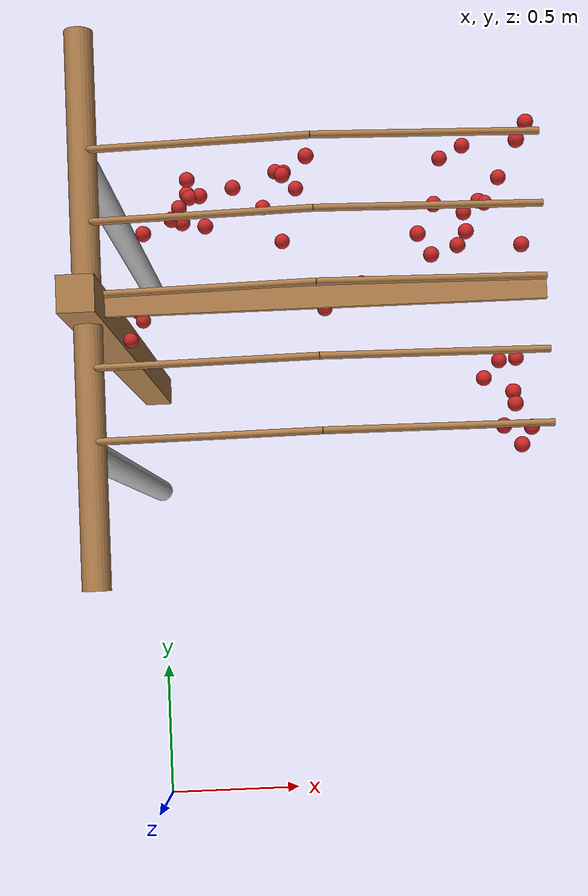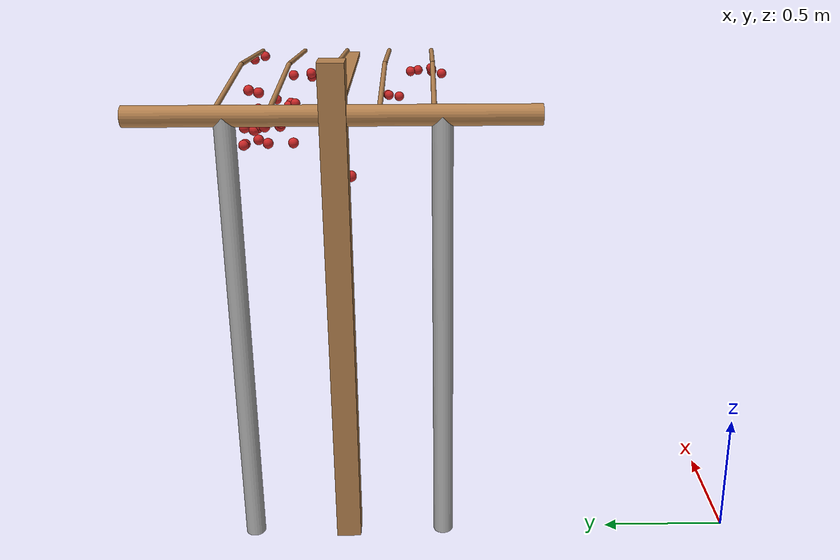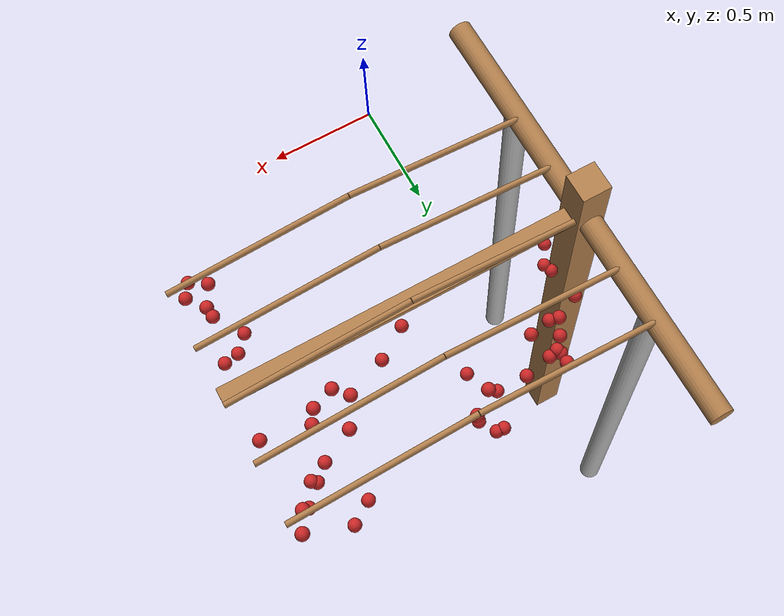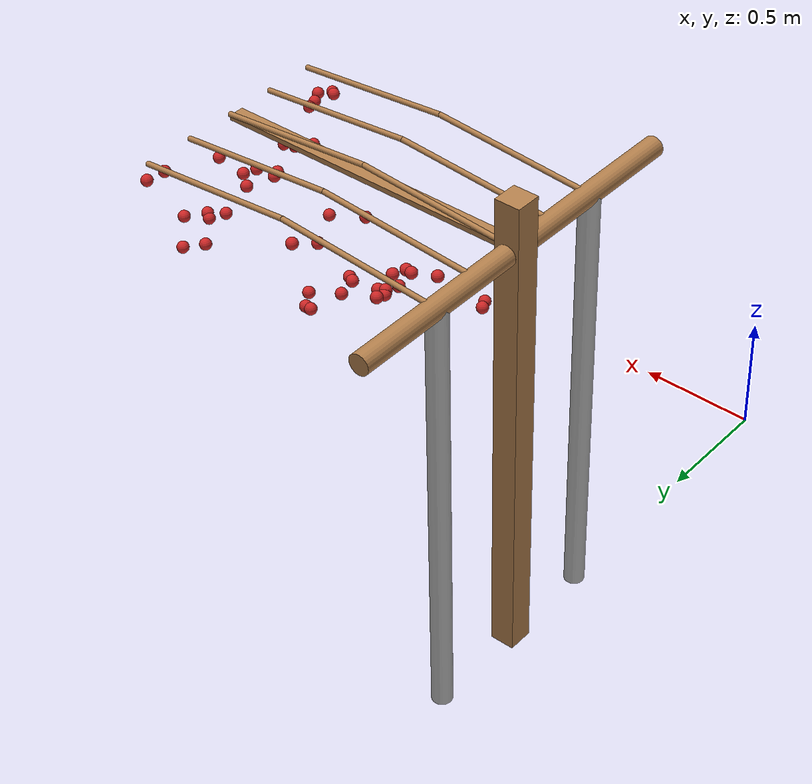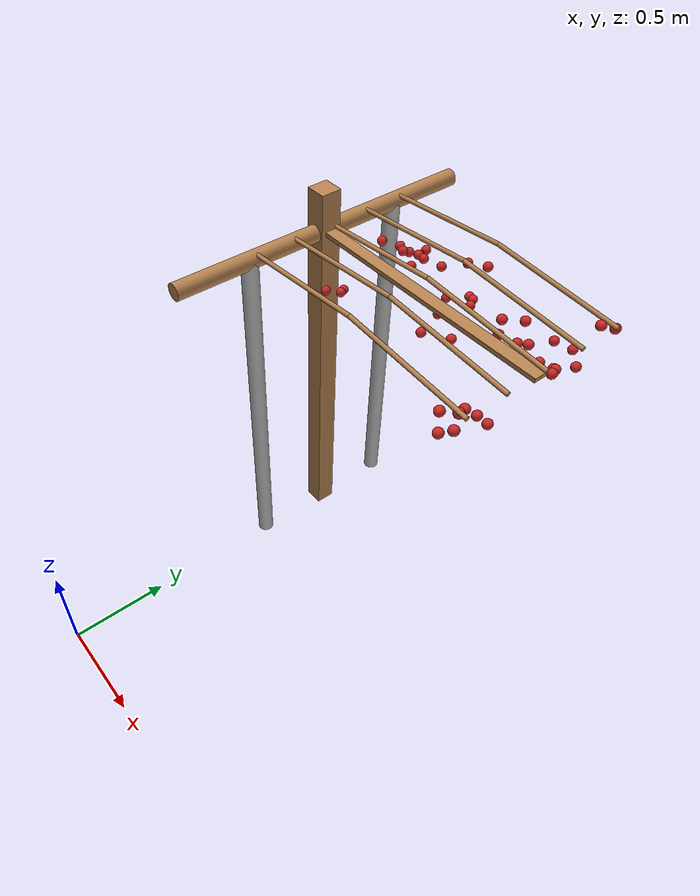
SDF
<sdf version="1.4">
 <model name="pergola">
  <include><name>post_2</name><pose>0.0 1.6 0 0 0 0</pose><uri>model://post</uri></include>
  <link name="beam_2">
   <pose>0.625 1.6 1.81 0 0 0</pose>
   <collision name="collision"><geometry><box><size>1.25 0.06 0.02</size></box></geometry></collision>
   <visual name="visual">
    <geometry><box><size>1.25 0.06 0.02</size></box></geometry>
    <material><script><name>Gazebo/Wood</name></script></material>
   </visual>
   <inertial>
    <mass>5</mass>
    <inertia>
     <ixx>0.0016666666666666668</ixx>
     <ixy>0.0</ixy>
     <ixz>0.0</ixz>
     <iyy>0.6525416666666667</iyy>
     <iyz>0.0</iyz>
     <izz>0.6512083333333333</izz>
    </inertia>
   </inertial>
  </link>
  <include><name>tree_1</name><pose>0.0 1.2000000000000002 0 0 0 0</pose><uri>model://tree_trunk</uri></include>
  <include><name>tree_2</name><pose>0.0 2.0 0 0 0 0</pose><uri>model://tree_trunk</uri></include>
  <link name="baseBranch_1">
   <pose>0.0 1.2000000000000002 1.8 1.5707963267948966 0 0</pose>
   <collision name="collision">
    <geometry><cylinder><radius>0.04</radius><length>0.74</length></cylinder></geometry>
   </collision>
   <visual name="visual">
    <geometry><cylinder><radius>0.04</radius><length>0.74</length></cylinder></geometry>
    <material><script><name>Gazebo/WoodFloor</name></script></material>
   </visual>
   <inertial>
    <mass>10</mass>
    <inertia>
     <ixx>0.4603333333333333</ixx>
     <ixy>0.0</ixy>
     <ixz>0.0</ixz>
     <iyy>0.4603333333333333</iyy>
     <iyz>0.0</iyz>
     <izz>0.008</izz>
    </inertia>
   </inertial>
  </link>
  <link name="baseBranch_2">
   <pose>0.0 2.0 1.8 1.5707963267948966 0 0</pose>
   <collision name="collision">
    <geometry><cylinder><radius>0.04</radius><length>0.74</length></cylinder></geometry>
   </collision>
   <visual name="visual">
    <geometry><cylinder><radius>0.04</radius><length>0.74</length></cylinder></geometry>
    <material><script><name>Gazebo/WoodFloor</name></script></material>
   </visual>
   <inertial>
    <mass>10</mass>
    <inertia>
     <ixx>0.4603333333333333</ixx>
     <ixy>0.0</ixy>
     <ixz>0.0</ixz>
     <iyy>0.4603333333333333</iyy>
     <iyz>0.0</iyz>
     <izz>0.008</izz>
    </inertia>
   </inertial>
  </link>
  <link name="vine_12">
   <pose>0.3125 1.2300000000000002 1.85 0 1.4909663410826592 0</pose>
   <collision name="collision">
    <geometry><cylinder><radius>0.01</radius><length>0.6269968101992226</length></cylinder></geometry>
   </collision>
   <visual name="visual">
    <geometry><cylinder><radius>0.01</radius><length>0.6269968101992226</length></cylinder></geometry>
    <material><script><name>Gazebo/WoodFloor</name></script></material>
   </visual>
   <inertial>
    <mass>5</mass>
    <inertia>
     <ixx>0.1639270833333333</ixx>
     <ixy>0.0</ixy>
     <ixz>0.0</ixz>
     <iyy>0.1639270833333333</iyy>
     <iyz>0.0</iyz>
     <izz>0.00025</izz>
    </inertia>
   </inertial>
  </link>
  <link name="vine_13">
   <pose>0.9375 1.2300000000000002 1.85 0 -1.4909663410826592 0</pose>
   <collision name="collision">
    <geometry><cylinder><radius>0.01</radius><length>0.6269968101992226</length></cylinder></geometry>
   </collision>
   <visual name="visual">
    <geometry><cylinder><radius>0.01</radius><length>0.6269968101992226</length></cylinder></geometry>
    <material><script><name>Gazebo/WoodFloor</name></script></material>
   </visual>
   <inertial>
    <mass>5</mass>
    <inertia>
     <ixx>0.1639270833333333</ixx>
     <ixy>0.0</ixy>
     <ixz>0.0</ixz>
     <iyy>0.1639270833333333</iyy>
     <iyz>0.0</iyz>
     <izz>0.00025</izz>
    </inertia>
   </inertial>
  </link>
  <link name="vine_14">
   <pose>0.3125 1.4300000000000002 1.85 0 1.4909663410826592 0</pose>
   <collision name="collision">
    <geometry><cylinder><radius>0.01</radius><length>0.6269968101992226</length></cylinder></geometry>
   </collision>
   <visual name="visual">
    <geometry><cylinder><radius>0.01</radius><length>0.6269968101992226</length></cylinder></geometry>
    <material><script><name>Gazebo/WoodFloor</name></script></material>
   </visual>
   <inertial>
    <mass>5</mass>
    <inertia>
     <ixx>0.1639270833333333</ixx>
     <ixy>0.0</ixy>
     <ixz>0.0</ixz>
     <iyy>0.1639270833333333</iyy>
     <iyz>0.0</iyz>
     <izz>0.00025</izz>
    </inertia>
   </inertial>
  </link>
  <link name="vine_15">
   <pose>0.9375 1.4300000000000002 1.85 0 -1.4909663410826592 0</pose>
   <collision name="collision">
    <geometry><cylinder><radius>0.01</radius><length>0.6269968101992226</length></cylinder></geometry>
   </collision>
   <visual name="visual">
    <geometry><cylinder><radius>0.01</radius><length>0.6269968101992226</length></cylinder></geometry>
    <material><script><name>Gazebo/WoodFloor</name></script></material>
   </visual>
   <inertial>
    <mass>5</mass>
    <inertia>
     <ixx>0.1639270833333333</ixx>
     <ixy>0.0</ixy>
     <ixz>0.0</ixz>
     <iyy>0.1639270833333333</iyy>
     <iyz>0.0</iyz>
     <izz>0.00025</izz>
    </inertia>
   </inertial>
  </link>
  <link name="vine_16">
   <pose>0.3125 1.6300000000000001 1.85 0 1.4909663410826592 0</pose>
   <collision name="collision">
    <geometry><cylinder><radius>0.01</radius><length>0.6269968101992226</length></cylinder></geometry>
   </collision>
   <visual name="visual">
    <geometry><cylinder><radius>0.01</radius><length>0.6269968101992226</length></cylinder></geometry>
    <material><script><name>Gazebo/WoodFloor</name></script></material>
   </visual>
   <inertial>
    <mass>5</mass>
    <inertia>
     <ixx>0.1639270833333333</ixx>
     <ixy>0.0</ixy>
     <ixz>0.0</ixz>
     <iyy>0.1639270833333333</iyy>
     <iyz>0.0</iyz>
     <izz>0.00025</izz>
    </inertia>
   </inertial>
  </link>
  <link name="vine_17">
   <pose>0.9375 1.6300000000000001 1.85 0 -1.4909663410826592 0</pose>
   <collision name="collision">
    <geometry><cylinder><radius>0.01</radius><length>0.6269968101992226</length></cylinder></geometry>
   </collision>
   <visual name="visual">
    <geometry><cylinder><radius>0.01</radius><length>0.6269968101992226</length></cylinder></geometry>
    <material><script><name>Gazebo/WoodFloor</name></script></material>
   </visual>
   <inertial>
    <mass>5</mass>
    <inertia>
     <ixx>0.1639270833333333</ixx>
     <ixy>0.0</ixy>
     <ixz>0.0</ixz>
     <iyy>0.1639270833333333</iyy>
     <iyz>0.0</iyz>
     <izz>0.00025</izz>
    </inertia>
   </inertial>
  </link>
  <link name="vine_18">
   <pose>0.3125 1.83 1.85 0 1.4909663410826592 0</pose>
   <collision name="collision">
    <geometry><cylinder><radius>0.01</radius><length>0.6269968101992226</length></cylinder></geometry>
   </collision>
   <visual name="visual">
    <geometry><cylinder><radius>0.01</radius><length>0.6269968101992226</length></cylinder></geometry>
    <material><script><name>Gazebo/WoodFloor</name></script></material>
   </visual>
   <inertial>
    <mass>5</mass>
    <inertia>
     <ixx>0.1639270833333333</ixx>
     <ixy>0.0</ixy>
     <ixz>0.0</ixz>
     <iyy>0.1639270833333333</iyy>
     <iyz>0.0</iyz>
     <izz>0.00025</izz>
    </inertia>
   </inertial>
  </link>
  <link name="vine_19">
   <pose>0.9375 1.83 1.85 0 -1.4909663410826592 0</pose>
   <collision name="collision">
    <geometry><cylinder><radius>0.01</radius><length>0.6269968101992226</length></cylinder></geometry>
   </collision>
   <visual name="visual">
    <geometry><cylinder><radius>0.01</radius><length>0.6269968101992226</length></cylinder></geometry>
    <material><script><name>Gazebo/WoodFloor</name></script></material>
   </visual>
   <inertial>
    <mass>5</mass>
    <inertia>
     <ixx>0.1639270833333333</ixx>
     <ixy>0.0</ixy>
     <ixz>0.0</ixz>
     <iyy>0.1639270833333333</iyy>
     <iyz>0.0</iyz>
     <izz>0.00025</izz>
    </inertia>
   </inertial>
  </link>
  <link name="vine_20">
   <pose>0.3125 2.03 1.85 0 1.4909663410826592 0</pose>
   <collision name="collision">
    <geometry><cylinder><radius>0.01</radius><length>0.6269968101992226</length></cylinder></geometry>
   </collision>
   <visual name="visual">
    <geometry><cylinder><radius>0.01</radius><length>0.6269968101992226</length></cylinder></geometry>
    <material><script><name>Gazebo/WoodFloor</name></script></material>
   </visual>
   <inertial>
    <mass>5</mass>
    <inertia>
     <ixx>0.1639270833333333</ixx>
     <ixy>0.0</ixy>
     <ixz>0.0</ixz>
     <iyy>0.1639270833333333</iyy>
     <iyz>0.0</iyz>
     <izz>0.00025</izz>
    </inertia>
   </inertial>
  </link>
  <link name="vine_21">
   <pose>0.9375 2.03 1.85 0 -1.4909663410826592 0</pose>
   <collision name="collision">
    <geometry><cylinder><radius>0.01</radius><length>0.6269968101992226</length></cylinder></geometry>
   </collision>
   <visual name="visual">
    <geometry><cylinder><radius>0.01</radius><length>0.6269968101992226</length></cylinder></geometry>
    <material><script><name>Gazebo/WoodFloor</name></script></material>
   </visual>
   <inertial>
    <mass>5</mass>
    <inertia>
     <ixx>0.1639270833333333</ixx>
     <ixy>0.0</ixy>
     <ixz>0.0</ixz>
     <iyy>0.1639270833333333</iyy>
     <iyz>0.0</iyz>
     <izz>0.00025</izz>
    </inertia>
   </inertial>
  </link>
  <link name="fruit_0">
   <pose>0.3225273567295616 1.8405149905720213 1.6840310632448954 0 0 0</pose>
   <collision name="fruit_collision_0"><geometry><sphere><radius>0.022</radius></sphere></geometry></collision>
   <visual name="visual">
    <geometry><sphere><radius>0.022</radius></sphere></geometry>
    <material><script><name>Gazebo/Red</name></script></material>
   </visual>
   <inertial>
    <mass>0.05</mass>
    <inertia>
     <ixx>9.679999999999999e-06</ixx>
     <ixy>0.0</ixy>
     <ixz>0.0</ixz>
     <iyy>9.679999999999999e-06</iyy>
     <iyz>0.0</iyz>
     <izz>9.679999999999999e-06</izz>
    </inertia>
   </inertial>
   <sensor name="fruit_contact_0" type="contact">
    <plugin name="contact_plugin_0" filename="libcontact_plugin.so"/>
    <contact><collision>fruit_collision_0</collision><topic>fruit_contact_topic_0</topic></contact>
   </sensor>
  </link>
  <link name="fruit_31">
   <pose>0.5364001979669047 1.8185090529240748 1.5596476393042469 0 0 0</pose>
   <collision name="fruit_collision_31"><geometry><sphere><radius>0.022</radius></sphere></geometry></collision>
   <visual name="visual">
    <geometry><sphere><radius>0.022</radius></sphere></geometry>
    <material><script><name>Gazebo/Red</name></script></material>
   </visual>
   <inertial>
    <mass>0.05</mass>
    <inertia>
     <ixx>9.679999999999999e-06</ixx>
     <ixy>0.0</ixy>
     <ixz>0.0</ixz>
     <iyy>9.679999999999999e-06</iyy>
     <iyz>0.0</iyz>
     <izz>9.679999999999999e-06</izz>
    </inertia>
   </inertial>
   <sensor name="fruit_contact_31" type="contact">
    <plugin name="contact_plugin_31" filename="libcontact_plugin.so"/>
    <contact><collision>fruit_collision_31</collision><topic>fruit_contact_topic_31</topic></contact>
   </sensor>
  </link>
  <link name="fruit_86">
   <pose>1.1895002529295056 2.01226719060957 1.8101280245405256 0 0 0</pose>
   <collision name="fruit_collision_86"><geometry><sphere><radius>0.022</radius></sphere></geometry></collision>
   <visual name="visual">
    <geometry><sphere><radius>0.022</radius></sphere></geometry>
    <material><script><name>Gazebo/Red</name></script></material>
   </visual>
   <inertial>
    <mass>0.05</mass>
    <inertia>
     <ixx>9.679999999999999e-06</ixx>
     <ixy>0.0</ixy>
     <ixz>0.0</ixz>
     <iyy>9.679999999999999e-06</iyy>
     <iyz>0.0</iyz>
     <izz>9.679999999999999e-06</izz>
    </inertia>
   </inertial>
   <sensor name="fruit_contact_86" type="contact">
    <plugin name="contact_plugin_86" filename="libcontact_plugin.so"/>
    <contact><collision>fruit_collision_86</collision><topic>fruit_contact_topic_86</topic></contact>
   </sensor>
  </link>
  <link name="fruit_92">
   <pose>0.08494786228611792 1.5492473335590864 1.544669189918997 0 0 0</pose>
   <collision name="fruit_collision_92"><geometry><sphere><radius>0.022</radius></sphere></geometry></collision>
   <visual name="visual">
    <geometry><sphere><radius>0.022</radius></sphere></geometry>
    <material><script><name>Gazebo/Red</name></script></material>
   </visual>
   <inertial>
    <mass>0.05</mass>
    <inertia>
     <ixx>9.679999999999999e-06</ixx>
     <ixy>0.0</ixy>
     <ixz>0.0</ixz>
     <iyy>9.679999999999999e-06</iyy>
     <iyz>0.0</iyz>
     <izz>9.679999999999999e-06</izz>
    </inertia>
   </inertial>
   <sensor name="fruit_contact_92" type="contact">
    <plugin name="contact_plugin_92" filename="libcontact_plugin.so"/>
    <contact><collision>fruit_collision_92</collision><topic>fruit_contact_topic_92</topic></contact>
   </sensor>
  </link>
  <link name="fruit_101">
   <pose>1.1229882979625103 1.232325282342489 1.7637829031186156 0 0 0</pose>
   <collision name="fruit_collision_101"><geometry><sphere><radius>0.022</radius></sphere></geometry></collision>
   <visual name="visual">
    <geometry><sphere><radius>0.022</radius></sphere></geometry>
    <material><script><name>Gazebo/Red</name></script></material>
   </visual>
   <inertial>
    <mass>0.05</mass>
    <inertia>
     <ixx>9.679999999999999e-06</ixx>
     <ixy>0.0</ixy>
     <ixz>0.0</ixz>
     <iyy>9.679999999999999e-06</iyy>
     <iyz>0.0</iyz>
     <izz>9.679999999999999e-06</izz>
    </inertia>
   </inertial>
   <sensor name="fruit_contact_101" type="contact">
    <plugin name="contact_plugin_101" filename="libcontact_plugin.so"/>
    <contact><collision>fruit_collision_101</collision><topic>fruit_contact_topic_101</topic></contact>
   </sensor>
  </link>
  <link name="fruit_103">
   <pose>1.0915563582873864 1.382369190686481 1.6380419247071136 0 0 0</pose>
   <collision name="fruit_collision_103"><geometry><sphere><radius>0.022</radius></sphere></geometry></collision>
   <visual name="visual">
    <geometry><sphere><radius>0.022</radius></sphere></geometry>
    <material><script><name>Gazebo/Red</name></script></material>
   </visual>
   <inertial>
    <mass>0.05</mass>
    <inertia>
     <ixx>9.679999999999999e-06</ixx>
     <ixy>0.0</ixy>
     <ixz>0.0</ixz>
     <iyy>9.679999999999999e-06</iyy>
     <iyz>0.0</iyz>
     <izz>9.679999999999999e-06</izz>
    </inertia>
   </inertial>
   <sensor name="fruit_contact_103" type="contact">
    <plugin name="contact_plugin_103" filename="libcontact_plugin.so"/>
    <contact><collision>fruit_collision_103</collision><topic>fruit_contact_topic_103</topic></contact>
   </sensor>
  </link>
  <link name="fruit_156">
   <pose>0.947747839698166 1.716631273491678 1.7553536726316872 0 0 0</pose>
   <collision name="fruit_collision_156"><geometry><sphere><radius>0.022</radius></sphere></geometry></collision>
   <visual name="visual">
    <geometry><sphere><radius>0.022</radius></sphere></geometry>
    <material><script><name>Gazebo/Red</name></script></material>
   </visual>
   <inertial>
    <mass>0.05</mass>
    <inertia>
     <ixx>9.679999999999999e-06</ixx>
     <ixy>0.0</ixy>
     <ixz>0.0</ixz>
     <iyy>9.679999999999999e-06</iyy>
     <iyz>0.0</iyz>
     <izz>9.679999999999999e-06</izz>
    </inertia>
   </inertial>
   <sensor name="fruit_contact_156" type="contact">
    <plugin name="contact_plugin_156" filename="libcontact_plugin.so"/>
    <contact><collision>fruit_collision_156</collision><topic>fruit_contact_topic_156</topic></contact>
   </sensor>
  </link>
  <link name="fruit_182">
   <pose>0.48419891619746147 1.9175595285857263 1.5716825052920949 0 0 0</pose>
   <collision name="fruit_collision_182"><geometry><sphere><radius>0.022</radius></sphere></geometry></collision>
   <visual name="visual">
    <geometry><sphere><radius>0.022</radius></sphere></geometry>
    <material><script><name>Gazebo/Red</name></script></material>
   </visual>
   <inertial>
    <mass>0.05</mass>
    <inertia>
     <ixx>9.679999999999999e-06</ixx>
     <ixy>0.0</ixy>
     <ixz>0.0</ixz>
     <iyy>9.679999999999999e-06</iyy>
     <iyz>0.0</iyz>
     <izz>9.679999999999999e-06</izz>
    </inertia>
   </inertial>
   <sensor name="fruit_contact_182" type="contact">
    <plugin name="contact_plugin_182" filename="libcontact_plugin.so"/>
    <contact><collision>fruit_collision_182</collision><topic>fruit_contact_topic_182</topic></contact>
   </sensor>
  </link>
  <link name="fruit_206">
   <pose>0.54478654498442 1.9527427432460631 1.7714930771649153 0 0 0</pose>
   <collision name="fruit_collision_206"><geometry><sphere><radius>0.022</radius></sphere></geometry></collision>
   <visual name="visual">
    <geometry><sphere><radius>0.022</radius></sphere></geometry>
    <material><script><name>Gazebo/Red</name></script></material>
   </visual>
   <inertial>
    <mass>0.05</mass>
    <inertia>
     <ixx>9.679999999999999e-06</ixx>
     <ixy>0.0</ixy>
     <ixz>0.0</ixz>
     <iyy>9.679999999999999e-06</iyy>
     <iyz>0.0</iyz>
     <izz>9.679999999999999e-06</izz>
    </inertia>
   </inertial>
   <sensor name="fruit_contact_206" type="contact">
    <plugin name="contact_plugin_206" filename="libcontact_plugin.so"/>
    <contact><collision>fruit_collision_206</collision><topic>fruit_contact_topic_206</topic></contact>
   </sensor>
  </link>
  <link name="fruit_221">
   <pose>1.2041568449195628 1.7424174604010396 1.720387239047525 0 0 0</pose>
   <collision name="fruit_collision_221"><geometry><sphere><radius>0.022</radius></sphere></geometry></collision>
   <visual name="visual">
    <geometry><sphere><radius>0.022</radius></sphere></geometry>
    <material><script><name>Gazebo/Red</name></script></material>
   </visual>
   <inertial>
    <mass>0.05</mass>
    <inertia>
     <ixx>9.679999999999999e-06</ixx>
     <ixy>0.0</ixy>
     <ixz>0.0</ixz>
     <iyy>9.679999999999999e-06</iyy>
     <iyz>0.0</iyz>
     <izz>9.679999999999999e-06</izz>
    </inertia>
   </inertial>
   <sensor name="fruit_contact_221" type="contact">
    <plugin name="contact_plugin_221" filename="libcontact_plugin.so"/>
    <contact><collision>fruit_collision_221</collision><topic>fruit_contact_topic_221</topic></contact>
   </sensor>
  </link>
  <link name="fruit_226">
   <pose>0.15289804693286033 1.812530846756972 1.7387979842097516 0 0 0</pose>
   <collision name="fruit_collision_226"><geometry><sphere><radius>0.022</radius></sphere></geometry></collision>
   <visual name="visual">
    <geometry><sphere><radius>0.022</radius></sphere></geometry>
    <material><script><name>Gazebo/Red</name></script></material>
   </visual>
   <inertial>
    <mass>0.05</mass>
    <inertia>
     <ixx>9.679999999999999e-06</ixx>
     <ixy>0.0</ixy>
     <ixz>0.0</ixz>
     <iyy>9.679999999999999e-06</iyy>
     <iyz>0.0</iyz>
     <izz>9.679999999999999e-06</izz>
    </inertia>
   </inertial>
   <sensor name="fruit_contact_226" type="contact">
    <plugin name="contact_plugin_226" filename="libcontact_plugin.so"/>
    <contact><collision>fruit_collision_226</collision><topic>fruit_contact_topic_226</topic></contact>
   </sensor>
  </link>
  <link name="fruit_250">
   <pose>0.6504289196335371 1.6019935370592375 1.6348968980321459 0 0 0</pose>
   <collision name="fruit_collision_250"><geometry><sphere><radius>0.022</radius></sphere></geometry></collision>
   <visual name="visual">
    <geometry><sphere><radius>0.022</radius></sphere></geometry>
    <material><script><name>Gazebo/Red</name></script></material>
   </visual>
   <inertial>
    <mass>0.05</mass>
    <inertia>
     <ixx>9.679999999999999e-06</ixx>
     <ixy>0.0</ixy>
     <ixz>0.0</ixz>
     <iyy>9.679999999999999e-06</iyy>
     <iyz>0.0</iyz>
     <izz>9.679999999999999e-06</izz>
    </inertia>
   </inertial>
   <sensor name="fruit_contact_250" type="contact">
    <plugin name="contact_plugin_250" filename="libcontact_plugin.so"/>
    <contact><collision>fruit_collision_250</collision><topic>fruit_contact_topic_250</topic></contact>
   </sensor>
  </link>
  <link name="fruit_262">
   <pose>1.0611208088133128 1.8667964777444608 1.6138167478594359 0 0 0</pose>
   <collision name="fruit_collision_262"><geometry><sphere><radius>0.022</radius></sphere></geometry></collision>
   <visual name="visual">
    <geometry><sphere><radius>0.022</radius></sphere></geometry>
    <material><script><name>Gazebo/Red</name></script></material>
   </visual>
   <inertial>
    <mass>0.05</mass>
    <inertia>
     <ixx>9.679999999999999e-06</ixx>
     <ixy>0.0</ixy>
     <ixz>0.0</ixz>
     <iyy>9.679999999999999e-06</iyy>
     <iyz>0.0</iyz>
     <izz>9.679999999999999e-06</izz>
    </inertia>
   </inertial>
   <sensor name="fruit_contact_262" type="contact">
    <plugin name="contact_plugin_262" filename="libcontact_plugin.so"/>
    <contact><collision>fruit_collision_262</collision><topic>fruit_contact_topic_262</topic></contact>
   </sensor>
  </link>
  <link name="fruit_276">
   <pose>0.910478817125676 1.7700634731187612 1.78186771902214 0 0 0</pose>
   <collision name="fruit_collision_276"><geometry><sphere><radius>0.022</radius></sphere></geometry></collision>
   <visual name="visual">
    <geometry><sphere><radius>0.022</radius></sphere></geometry>
    <material><script><name>Gazebo/Red</name></script></material>
   </visual>
   <inertial>
    <mass>0.05</mass>
    <inertia>
     <ixx>9.679999999999999e-06</ixx>
     <ixy>0.0</ixy>
     <ixz>0.0</ixz>
     <iyy>9.679999999999999e-06</iyy>
     <iyz>0.0</iyz>
     <izz>9.679999999999999e-06</izz>
    </inertia>
   </inertial>
   <sensor name="fruit_contact_276" type="contact">
    <plugin name="contact_plugin_276" filename="libcontact_plugin.so"/>
    <contact><collision>fruit_collision_276</collision><topic>fruit_contact_topic_276</topic></contact>
   </sensor>
  </link>
  <link name="fruit_311">
   <pose>0.2515280540978459 1.8919731317827642 1.6991050537490546 0 0 0</pose>
   <collision name="fruit_collision_311"><geometry><sphere><radius>0.022</radius></sphere></geometry></collision>
   <visual name="visual">
    <geometry><sphere><radius>0.022</radius></sphere></geometry>
    <material><script><name>Gazebo/Red</name></script></material>
   </visual>
   <inertial>
    <mass>0.05</mass>
    <inertia>
     <ixx>9.679999999999999e-06</ixx>
     <ixy>0.0</ixy>
     <ixz>0.0</ixz>
     <iyy>9.679999999999999e-06</iyy>
     <iyz>0.0</iyz>
     <izz>9.679999999999999e-06</izz>
    </inertia>
   </inertial>
   <sensor name="fruit_contact_311" type="contact">
    <plugin name="contact_plugin_311" filename="libcontact_plugin.so"/>
    <contact><collision>fruit_collision_311</collision><topic>fruit_contact_topic_311</topic></contact>
   </sensor>
  </link>
  <link name="fruit_313">
   <pose>1.0000682452482068 2.0308738691373827 1.6030450525827693 0 0 0</pose>
   <collision name="fruit_collision_313"><geometry><sphere><radius>0.022</radius></sphere></geometry></collision>
   <visual name="visual">
    <geometry><sphere><radius>0.022</radius></sphere></geometry>
    <material><script><name>Gazebo/Red</name></script></material>
   </visual>
   <inertial>
    <mass>0.05</mass>
    <inertia>
     <ixx>9.679999999999999e-06</ixx>
     <ixy>0.0</ixy>
     <ixz>0.0</ixz>
     <iyy>9.679999999999999e-06</iyy>
     <iyz>0.0</iyz>
     <izz>9.679999999999999e-06</izz>
    </inertia>
   </inertial>
   <sensor name="fruit_contact_313" type="contact">
    <plugin name="contact_plugin_313" filename="libcontact_plugin.so"/>
    <contact><collision>fruit_collision_313</collision><topic>fruit_contact_topic_313</topic></contact>
   </sensor>
  </link>
  <link name="fruit_346">
   <pose>1.2209945789919916 2.067080214084463 1.7886761623060292 0 0 0</pose>
   <collision name="fruit_collision_346"><geometry><sphere><radius>0.022</radius></sphere></geometry></collision>
   <visual name="visual">
    <geometry><sphere><radius>0.022</radius></sphere></geometry>
    <material><script><name>Gazebo/Red</name></script></material>
   </visual>
   <inertial>
    <mass>0.05</mass>
    <inertia>
     <ixx>9.679999999999999e-06</ixx>
     <ixy>0.0</ixy>
     <ixz>0.0</ixz>
     <iyy>9.679999999999999e-06</iyy>
     <iyz>0.0</iyz>
     <izz>9.679999999999999e-06</izz>
    </inertia>
   </inertial>
   <sensor name="fruit_contact_346" type="contact">
    <plugin name="contact_plugin_346" filename="libcontact_plugin.so"/>
    <contact><collision>fruit_collision_346</collision><topic>fruit_contact_topic_346</topic></contact>
   </sensor>
  </link>
  <link name="fruit_364">
   <pose>1.1754902094546638 1.1820589170789002 1.7280052667277521 0 0 0</pose>
   <collision name="fruit_collision_364"><geometry><sphere><radius>0.022</radius></sphere></geometry></collision>
   <visual name="visual">
    <geometry><sphere><radius>0.022</radius></sphere></geometry>
    <material><script><name>Gazebo/Red</name></script></material>
   </visual>
   <inertial>
    <mass>0.05</mass>
    <inertia>
     <ixx>9.679999999999999e-06</ixx>
     <ixy>0.0</ixy>
     <ixz>0.0</ixz>
     <iyy>9.679999999999999e-06</iyy>
     <iyz>0.0</iyz>
     <izz>9.679999999999999e-06</izz>
    </inertia>
   </inertial>
   <sensor name="fruit_contact_364" type="contact">
    <plugin name="contact_plugin_364" filename="libcontact_plugin.so"/>
    <contact><collision>fruit_collision_364</collision><topic>fruit_contact_topic_364</topic></contact>
   </sensor>
  </link>
  <link name="fruit_366">
   <pose>1.160125437372911 1.293909158338664 1.747805847627701 0 0 0</pose>
   <collision name="fruit_collision_366"><geometry><sphere><radius>0.022</radius></sphere></geometry></collision>
   <visual name="visual">
    <geometry><sphere><radius>0.022</radius></sphere></geometry>
    <material><script><name>Gazebo/Red</name></script></material>
   </visual>
   <inertial>
    <mass>0.05</mass>
    <inertia>
     <ixx>9.679999999999999e-06</ixx>
     <ixy>0.0</ixy>
     <ixz>0.0</ixz>
     <iyy>9.679999999999999e-06</iyy>
     <iyz>0.0</iyz>
     <izz>9.679999999999999e-06</izz>
    </inertia>
   </inertial>
   <sensor name="fruit_contact_366" type="contact">
    <plugin name="contact_plugin_366" filename="libcontact_plugin.so"/>
    <contact><collision>fruit_collision_366</collision><topic>fruit_contact_topic_366</topic></contact>
   </sensor>
  </link>
  <link name="fruit_376">
   <pose>0.5239546907367977 2.026809737029485 1.553896722261328 0 0 0</pose>
   <collision name="fruit_collision_376"><geometry><sphere><radius>0.022</radius></sphere></geometry></collision>
   <visual name="visual">
    <geometry><sphere><radius>0.022</radius></sphere></geometry>
    <material><script><name>Gazebo/Red</name></script></material>
   </visual>
   <inertial>
    <mass>0.05</mass>
    <inertia>
     <ixx>9.679999999999999e-06</ixx>
     <ixy>0.0</ixy>
     <ixz>0.0</ixz>
     <iyy>9.679999999999999e-06</iyy>
     <iyz>0.0</iyz>
     <izz>9.679999999999999e-06</izz>
    </inertia>
   </inertial>
   <sensor name="fruit_contact_376" type="contact">
    <plugin name="contact_plugin_376" filename="libcontact_plugin.so"/>
    <contact><collision>fruit_collision_376</collision><topic>fruit_contact_topic_376</topic></contact>
   </sensor>
  </link>
  <link name="fruit_396">
   <pose>1.1076608903005674 1.9048854159730695 1.5929215124539255 0 0 0</pose>
   <collision name="fruit_collision_396"><geometry><sphere><radius>0.022</radius></sphere></geometry></collision>
   <visual name="visual">
    <geometry><sphere><radius>0.022</radius></sphere></geometry>
    <material><script><name>Gazebo/Red</name></script></material>
   </visual>
   <inertial>
    <mass>0.05</mass>
    <inertia>
     <ixx>9.679999999999999e-06</ixx>
     <ixy>0.0</ixy>
     <ixz>0.0</ixz>
     <iyy>9.679999999999999e-06</iyy>
     <iyz>0.0</iyz>
     <izz>9.679999999999999e-06</izz>
    </inertia>
   </inertial>
   <sensor name="fruit_contact_396" type="contact">
    <plugin name="contact_plugin_396" filename="libcontact_plugin.so"/>
    <contact><collision>fruit_collision_396</collision><topic>fruit_contact_topic_396</topic></contact>
   </sensor>
  </link>
  <link name="fruit_405">
   <pose>1.1564934330849863 1.3279728810831766 1.7426872211136382 0 0 0</pose>
   <collision name="fruit_collision_405"><geometry><sphere><radius>0.022</radius></sphere></geometry></collision>
   <visual name="visual">
    <geometry><sphere><radius>0.022</radius></sphere></geometry>
    <material><script><name>Gazebo/Red</name></script></material>
   </visual>
   <inertial>
    <mass>0.05</mass>
    <inertia>
     <ixx>9.679999999999999e-06</ixx>
     <ixy>0.0</ixy>
     <ixz>0.0</ixz>
     <iyy>9.679999999999999e-06</iyy>
     <iyz>0.0</iyz>
     <izz>9.679999999999999e-06</izz>
    </inertia>
   </inertial>
   <sensor name="fruit_contact_405" type="contact">
    <plugin name="contact_plugin_405" filename="libcontact_plugin.so"/>
    <contact><collision>fruit_collision_405</collision><topic>fruit_contact_topic_405</topic></contact>
   </sensor>
  </link>
  <link name="fruit_432">
   <pose>0.3090878690971007 1.9292409775515893 1.6794603402046757 0 0 0</pose>
   <collision name="fruit_collision_432"><geometry><sphere><radius>0.022</radius></sphere></geometry></collision>
   <visual name="visual">
    <geometry><sphere><radius>0.022</radius></sphere></geometry>
    <material><script><name>Gazebo/Red</name></script></material>
   </visual>
   <inertial>
    <mass>0.05</mass>
    <inertia>
     <ixx>9.679999999999999e-06</ixx>
     <ixy>0.0</ixy>
     <ixz>0.0</ixz>
     <iyy>9.679999999999999e-06</iyy>
     <iyz>0.0</iyz>
     <izz>9.679999999999999e-06</izz>
    </inertia>
   </inertial>
   <sensor name="fruit_contact_432" type="contact">
    <plugin name="contact_plugin_432" filename="libcontact_plugin.so"/>
    <contact><collision>fruit_collision_432</collision><topic>fruit_contact_topic_432</topic></contact>
   </sensor>
  </link>
  <link name="fruit_489">
   <pose>0.960243371825367 1.8549806902592934 1.7642659657619935 0 0 0</pose>
   <collision name="fruit_collision_489"><geometry><sphere><radius>0.022</radius></sphere></geometry></collision>
   <visual name="visual">
    <geometry><sphere><radius>0.022</radius></sphere></geometry>
    <material><script><name>Gazebo/Red</name></script></material>
   </visual>
   <inertial>
    <mass>0.05</mass>
    <inertia>
     <ixx>9.679999999999999e-06</ixx>
     <ixy>0.0</ixy>
     <ixz>0.0</ixz>
     <iyy>9.679999999999999e-06</iyy>
     <iyz>0.0</iyz>
     <izz>9.679999999999999e-06</izz>
    </inertia>
   </inertial>
   <sensor name="fruit_contact_489" type="contact">
    <plugin name="contact_plugin_489" filename="libcontact_plugin.so"/>
    <contact><collision>fruit_collision_489</collision><topic>fruit_contact_topic_489</topic></contact>
   </sensor>
  </link>
  <link name="fruit_518">
   <pose>1.0225637080355767 1.7413450966383324 1.7486246091032833 0 0 0</pose>
   <collision name="fruit_collision_518"><geometry><sphere><radius>0.022</radius></sphere></geometry></collision>
   <visual name="visual">
    <geometry><sphere><radius>0.022</radius></sphere></geometry>
    <material><script><name>Gazebo/Red</name></script></material>
   </visual>
   <inertial>
    <mass>0.05</mass>
    <inertia>
     <ixx>9.679999999999999e-06</ixx>
     <ixy>0.0</ixy>
     <ixz>0.0</ixz>
     <iyy>9.679999999999999e-06</iyy>
     <iyz>0.0</iyz>
     <izz>9.679999999999999e-06</izz>
    </inertia>
   </inertial>
   <sensor name="fruit_contact_518" type="contact">
    <plugin name="contact_plugin_518" filename="libcontact_plugin.so"/>
    <contact><collision>fruit_collision_518</collision><topic>fruit_contact_topic_518</topic></contact>
   </sensor>
  </link>
  <link name="fruit_525">
   <pose>1.1377262371050363 1.4314219234621828 1.6341664578632507 0 0 0</pose>
   <collision name="fruit_collision_525"><geometry><sphere><radius>0.022</radius></sphere></geometry></collision>
   <visual name="visual">
    <geometry><sphere><radius>0.022</radius></sphere></geometry>
    <material><script><name>Gazebo/Red</name></script></material>
   </visual>
   <inertial>
    <mass>0.05</mass>
    <inertia>
     <ixx>9.679999999999999e-06</ixx>
     <ixy>0.0</ixy>
     <ixz>0.0</ixz>
     <iyy>9.679999999999999e-06</iyy>
     <iyz>0.0</iyz>
     <izz>9.679999999999999e-06</izz>
    </inertia>
   </inertial>
   <sensor name="fruit_contact_525" type="contact">
    <plugin name="contact_plugin_525" filename="libcontact_plugin.so"/>
    <contact><collision>fruit_collision_525</collision><topic>fruit_contact_topic_525</topic></contact>
   </sensor>
  </link>
  <link name="fruit_555">
   <pose>1.0699865171902372 2.071997731974624 1.5814551327224275 0 0 0</pose>
   <collision name="fruit_collision_555"><geometry><sphere><radius>0.022</radius></sphere></geometry></collision>
   <visual name="visual">
    <geometry><sphere><radius>0.022</radius></sphere></geometry>
    <material><script><name>Gazebo/Red</name></script></material>
   </visual>
   <inertial>
    <mass>0.05</mass>
    <inertia>
     <ixx>9.679999999999999e-06</ixx>
     <ixy>0.0</ixy>
     <ixz>0.0</ixz>
     <iyy>9.679999999999999e-06</iyy>
     <iyz>0.0</iyz>
     <izz>9.679999999999999e-06</izz>
    </inertia>
   </inertial>
   <sensor name="fruit_contact_555" type="contact">
    <plugin name="contact_plugin_555" filename="libcontact_plugin.so"/>
    <contact><collision>fruit_collision_555</collision><topic>fruit_contact_topic_555</topic></contact>
   </sensor>
  </link>
  <link name="fruit_557">
   <pose>0.612890027979164 2.004567895978685 1.767697088653531 0 0 0</pose>
   <collision name="fruit_collision_557"><geometry><sphere><radius>0.022</radius></sphere></geometry></collision>
   <visual name="visual">
    <geometry><sphere><radius>0.022</radius></sphere></geometry>
    <material><script><name>Gazebo/Red</name></script></material>
   </visual>
   <inertial>
    <mass>0.05</mass>
    <inertia>
     <ixx>9.679999999999999e-06</ixx>
     <ixy>0.0</ixy>
     <ixz>0.0</ixz>
     <iyy>9.679999999999999e-06</iyy>
     <iyz>0.0</iyz>
     <izz>9.679999999999999e-06</izz>
    </inertia>
   </inertial>
   <sensor name="fruit_contact_557" type="contact">
    <plugin name="contact_plugin_557" filename="libcontact_plugin.so"/>
    <contact><collision>fruit_collision_557</collision><topic>fruit_contact_topic_557</topic></contact>
   </sensor>
  </link>
  <link name="fruit_562">
   <pose>1.1873786886776798 1.4375528595326783 1.6259873701920335 0 0 0</pose>
   <collision name="fruit_collision_562"><geometry><sphere><radius>0.022</radius></sphere></geometry></collision>
   <visual name="visual">
    <geometry><sphere><radius>0.022</radius></sphere></geometry>
    <material><script><name>Gazebo/Red</name></script></material>
   </visual>
   <inertial>
    <mass>0.05</mass>
    <inertia>
     <ixx>9.679999999999999e-06</ixx>
     <ixy>0.0</ixy>
     <ixz>0.0</ixz>
     <iyy>9.679999999999999e-06</iyy>
     <iyz>0.0</iyz>
     <izz>9.679999999999999e-06</izz>
    </inertia>
   </inertial>
   <sensor name="fruit_contact_562" type="contact">
    <plugin name="contact_plugin_562" filename="libcontact_plugin.so"/>
    <contact><collision>fruit_collision_562</collision><topic>fruit_contact_topic_562</topic></contact>
   </sensor>
  </link>
  <link name="fruit_581">
   <pose>0.4034477267908899 1.9484588221079235 1.6808545609554795 0 0 0</pose>
   <collision name="fruit_collision_581"><geometry><sphere><radius>0.022</radius></sphere></geometry></collision>
   <visual name="visual">
    <geometry><sphere><radius>0.022</radius></sphere></geometry>
    <material><script><name>Gazebo/Red</name></script></material>
   </visual>
   <inertial>
    <mass>0.05</mass>
    <inertia>
     <ixx>9.679999999999999e-06</ixx>
     <ixy>0.0</ixy>
     <ixz>0.0</ixz>
     <iyy>9.679999999999999e-06</iyy>
     <iyz>0.0</iyz>
     <izz>9.679999999999999e-06</izz>
    </inertia>
   </inertial>
   <sensor name="fruit_contact_581" type="contact">
    <plugin name="contact_plugin_581" filename="libcontact_plugin.so"/>
    <contact><collision>fruit_collision_581</collision><topic>fruit_contact_topic_581</topic></contact>
   </sensor>
  </link>
  <link name="fruit_588">
   <pose>0.7575986340852768 1.6699112595255956 1.6337607415304471 0 0 0</pose>
   <collision name="fruit_collision_588"><geometry><sphere><radius>0.022</radius></sphere></geometry></collision>
   <visual name="visual">
    <geometry><sphere><radius>0.022</radius></sphere></geometry>
    <material><script><name>Gazebo/Red</name></script></material>
   </visual>
   <inertial>
    <mass>0.05</mass>
    <inertia>
     <ixx>9.679999999999999e-06</ixx>
     <ixy>0.0</ixy>
     <ixz>0.0</ixz>
     <iyy>9.679999999999999e-06</iyy>
     <iyz>0.0</iyz>
     <izz>9.679999999999999e-06</izz>
    </inertia>
   </inertial>
   <sensor name="fruit_contact_588" type="contact">
    <plugin name="contact_plugin_588" filename="libcontact_plugin.so"/>
    <contact><collision>fruit_collision_588</collision><topic>fruit_contact_topic_588</topic></contact>
   </sensor>
  </link>
  <link name="fruit_595">
   <pose>0.12113541673849401 1.6078667016984733 1.5300018532292259 0 0 0</pose>
   <collision name="fruit_collision_595"><geometry><sphere><radius>0.022</radius></sphere></geometry></collision>
   <visual name="visual">
    <geometry><sphere><radius>0.022</radius></sphere></geometry>
    <material><script><name>Gazebo/Red</name></script></material>
   </visual>
   <inertial>
    <mass>0.05</mass>
    <inertia>
     <ixx>9.679999999999999e-06</ixx>
     <ixy>0.0</ixy>
     <ixz>0.0</ixz>
     <iyy>9.679999999999999e-06</iyy>
     <iyz>0.0</iyz>
     <izz>9.679999999999999e-06</izz>
    </inertia>
   </inertial>
   <sensor name="fruit_contact_595" type="contact">
    <plugin name="contact_plugin_595" filename="libcontact_plugin.so"/>
    <contact><collision>fruit_collision_595</collision><topic>fruit_contact_topic_595</topic></contact>
   </sensor>
  </link>
  <link name="fruit_596">
   <pose>1.1661245162391738 1.966311464342727 1.6091600578187868 0 0 0</pose>
   <collision name="fruit_collision_596"><geometry><sphere><radius>0.022</radius></sphere></geometry></collision>
   <visual name="visual">
    <geometry><sphere><radius>0.022</radius></sphere></geometry>
    <material><script><name>Gazebo/Red</name></script></material>
   </visual>
   <inertial>
    <mass>0.05</mass>
    <inertia>
     <ixx>9.679999999999999e-06</ixx>
     <ixy>0.0</ixy>
     <ixz>0.0</ixz>
     <iyy>9.679999999999999e-06</iyy>
     <iyz>0.0</iyz>
     <izz>9.679999999999999e-06</izz>
    </inertia>
   </inertial>
   <sensor name="fruit_contact_596" type="contact">
    <plugin name="contact_plugin_596" filename="libcontact_plugin.so"/>
    <contact><collision>fruit_collision_596</collision><topic>fruit_contact_topic_596</topic></contact>
   </sensor>
  </link>
  <link name="fruit_629">
   <pose>0.27560871754712224 1.9740301349604954 1.6899688227246772 0 0 0</pose>
   <collision name="fruit_collision_629"><geometry><sphere><radius>0.022</radius></sphere></geometry></collision>
   <visual name="visual">
    <geometry><sphere><radius>0.022</radius></sphere></geometry>
    <material><script><name>Gazebo/Red</name></script></material>
   </visual>
   <inertial>
    <mass>0.05</mass>
    <inertia>
     <ixx>9.679999999999999e-06</ixx>
     <ixy>0.0</ixy>
     <ixz>0.0</ixz>
     <iyy>9.679999999999999e-06</iyy>
     <iyz>0.0</iyz>
     <izz>9.679999999999999e-06</izz>
    </inertia>
   </inertial>
   <sensor name="fruit_contact_629" type="contact">
    <plugin name="contact_plugin_629" filename="libcontact_plugin.so"/>
    <contact><collision>fruit_collision_629</collision><topic>fruit_contact_topic_629</topic></contact>
   </sensor>
  </link>
  <link name="fruit_648">
   <pose>1.1235742811243725 1.8951119468671696 1.6037840570567368 0 0 0</pose>
   <collision name="fruit_collision_648"><geometry><sphere><radius>0.022</radius></sphere></geometry></collision>
   <visual name="visual">
    <geometry><sphere><radius>0.022</radius></sphere></geometry>
    <material><script><name>Gazebo/Red</name></script></material>
   </visual>
   <inertial>
    <mass>0.05</mass>
    <inertia>
     <ixx>9.679999999999999e-06</ixx>
     <ixy>0.0</ixy>
     <ixz>0.0</ixz>
     <iyy>9.679999999999999e-06</iyy>
     <iyz>0.0</iyz>
     <izz>9.679999999999999e-06</izz>
    </inertia>
   </inertial>
   <sensor name="fruit_contact_648" type="contact">
    <plugin name="contact_plugin_648" filename="libcontact_plugin.so"/>
    <contact><collision>fruit_collision_648</collision><topic>fruit_contact_topic_648</topic></contact>
   </sensor>
  </link>
  <link name="fruit_655">
   <pose>0.2620881157453664 1.8409167318144157 1.7305855626798587 0 0 0</pose>
   <collision name="fruit_collision_655"><geometry><sphere><radius>0.022</radius></sphere></geometry></collision>
   <visual name="visual">
    <geometry><sphere><radius>0.022</radius></sphere></geometry>
    <material><script><name>Gazebo/Red</name></script></material>
   </visual>
   <inertial>
    <mass>0.05</mass>
    <inertia>
     <ixx>9.679999999999999e-06</ixx>
     <ixy>0.0</ixy>
     <ixz>0.0</ixz>
     <iyy>9.679999999999999e-06</iyy>
     <iyz>0.0</iyz>
     <izz>9.679999999999999e-06</izz>
    </inertia>
   </inertial>
   <sensor name="fruit_contact_655" type="contact">
    <plugin name="contact_plugin_655" filename="libcontact_plugin.so"/>
    <contact><collision>fruit_collision_655</collision><topic>fruit_contact_topic_655</topic></contact>
   </sensor>
  </link>
  <link name="fruit_673">
   <pose>1.2039421706880926 1.2288033617352234 1.7336411827114506 0 0 0</pose>
   <collision name="fruit_collision_673"><geometry><sphere><radius>0.022</radius></sphere></geometry></collision>
   <visual name="visual">
    <geometry><sphere><radius>0.022</radius></sphere></geometry>
    <material><script><name>Gazebo/Red</name></script></material>
   </visual>
   <inertial>
    <mass>0.05</mass>
    <inertia>
     <ixx>9.679999999999999e-06</ixx>
     <ixy>0.0</ixy>
     <ixz>0.0</ixz>
     <iyy>9.679999999999999e-06</iyy>
     <iyz>0.0</iyz>
     <izz>9.679999999999999e-06</izz>
    </inertia>
   </inertial>
   <sensor name="fruit_contact_673" type="contact">
    <plugin name="contact_plugin_673" filename="libcontact_plugin.so"/>
    <contact><collision>fruit_collision_673</collision><topic>fruit_contact_topic_673</topic></contact>
   </sensor>
  </link>
  <link name="fruit_713">
   <pose>1.048656252697989 1.7811893484338228 1.7395348768739072 0 0 0</pose>
   <collision name="fruit_collision_713"><geometry><sphere><radius>0.022</radius></sphere></geometry></collision>
   <visual name="visual">
    <geometry><sphere><radius>0.022</radius></sphere></geometry>
    <material><script><name>Gazebo/Red</name></script></material>
   </visual>
   <inertial>
    <mass>0.05</mass>
    <inertia>
     <ixx>9.679999999999999e-06</ixx>
     <ixy>0.0</ixy>
     <ixz>0.0</ixz>
     <iyy>9.679999999999999e-06</iyy>
     <iyz>0.0</iyz>
     <izz>9.679999999999999e-06</izz>
    </inertia>
   </inertial>
   <sensor name="fruit_contact_713" type="contact">
    <plugin name="contact_plugin_713" filename="libcontact_plugin.so"/>
    <contact><collision>fruit_collision_713</collision><topic>fruit_contact_topic_713</topic></contact>
   </sensor>
  </link>
  <link name="fruit_743">
   <pose>0.1096958202658087 1.6347369741664453 1.525845699442012 0 0 0</pose>
   <collision name="fruit_collision_743"><geometry><sphere><radius>0.022</radius></sphere></geometry></collision>
   <visual name="visual">
    <geometry><sphere><radius>0.022</radius></sphere></geometry>
    <material><script><name>Gazebo/Red</name></script></material>
   </visual>
   <inertial>
    <mass>0.05</mass>
    <inertia>
     <ixx>9.679999999999999e-06</ixx>
     <ixy>0.0</ixy>
     <ixz>0.0</ixz>
     <iyy>9.679999999999999e-06</iyy>
     <iyz>0.0</iyz>
     <izz>9.679999999999999e-06</izz>
    </inertia>
   </inertial>
   <sensor name="fruit_contact_743" type="contact">
    <plugin name="contact_plugin_743" filename="libcontact_plugin.so"/>
    <contact><collision>fruit_collision_743</collision><topic>fruit_contact_topic_743</topic></contact>
   </sensor>
  </link>
  <link name="fruit_750">
   <pose>0.273640198247994 1.9360147123558398 1.6800828240652441 0 0 0</pose>
   <collision name="fruit_collision_750"><geometry><sphere><radius>0.022</radius></sphere></geometry></collision>
   <visual name="visual">
    <geometry><sphere><radius>0.022</radius></sphere></geometry>
    <material><script><name>Gazebo/Red</name></script></material>
   </visual>
   <inertial>
    <mass>0.05</mass>
    <inertia>
     <ixx>9.679999999999999e-06</ixx>
     <ixy>0.0</ixy>
     <ixz>0.0</ixz>
     <iyy>9.679999999999999e-06</iyy>
     <iyz>0.0</iyz>
     <izz>9.679999999999999e-06</izz>
    </inertia>
   </inertial>
   <sensor name="fruit_contact_750" type="contact">
    <plugin name="contact_plugin_750" filename="libcontact_plugin.so"/>
    <contact><collision>fruit_collision_750</collision><topic>fruit_contact_topic_750</topic></contact>
   </sensor>
  </link>
  <link name="fruit_757">
   <pose>0.5482966944636297 2.02413979206184 1.5521884559705077 0 0 0</pose>
   <collision name="fruit_collision_757"><geometry><sphere><radius>0.022</radius></sphere></geometry></collision>
   <visual name="visual">
    <geometry><sphere><radius>0.022</radius></sphere></geometry>
    <material><script><name>Gazebo/Red</name></script></material>
   </visual>
   <inertial>
    <mass>0.05</mass>
    <inertia>
     <ixx>9.679999999999999e-06</ixx>
     <ixy>0.0</ixy>
     <ixz>0.0</ixz>
     <iyy>9.679999999999999e-06</iyy>
     <iyz>0.0</iyz>
     <izz>9.679999999999999e-06</izz>
    </inertia>
   </inertial>
   <sensor name="fruit_contact_757" type="contact">
    <plugin name="contact_plugin_757" filename="libcontact_plugin.so"/>
    <contact><collision>fruit_collision_757</collision><topic>fruit_contact_topic_757</topic></contact>
   </sensor>
  </link>
  <link name="fruit_761">
   <pose>0.5819490856072915 1.9720108860388785 1.5621428307413574 0 0 0</pose>
   <collision name="fruit_collision_761"><geometry><sphere><radius>0.022</radius></sphere></geometry></collision>
   <visual name="visual">
    <geometry><sphere><radius>0.022</radius></sphere></geometry>
    <material><script><name>Gazebo/Red</name></script></material>
   </visual>
   <inertial>
    <mass>0.05</mass>
    <inertia>
     <ixx>9.679999999999999e-06</ixx>
     <ixy>0.0</ixy>
     <ixz>0.0</ixz>
     <iyy>9.679999999999999e-06</iyy>
     <iyz>0.0</iyz>
     <izz>9.679999999999999e-06</izz>
    </inertia>
   </inertial>
   <sensor name="fruit_contact_761" type="contact">
    <plugin name="contact_plugin_761" filename="libcontact_plugin.so"/>
    <contact><collision>fruit_collision_761</collision><topic>fruit_contact_topic_761</topic></contact>
   </sensor>
  </link>
  <link name="fruit_801">
   <pose>0.23266932143247337 1.849958534435841 1.7373995431152256 0 0 0</pose>
   <collision name="fruit_collision_801"><geometry><sphere><radius>0.022</radius></sphere></geometry></collision>
   <visual name="visual">
    <geometry><sphere><radius>0.022</radius></sphere></geometry>
    <material><script><name>Gazebo/Red</name></script></material>
   </visual>
   <inertial>
    <mass>0.05</mass>
    <inertia>
     <ixx>9.679999999999999e-06</ixx>
     <ixy>0.0</ixy>
     <ixz>0.0</ixz>
     <iyy>9.679999999999999e-06</iyy>
     <iyz>0.0</iyz>
     <izz>9.679999999999999e-06</izz>
    </inertia>
   </inertial>
   <sensor name="fruit_contact_801" type="contact">
    <plugin name="contact_plugin_801" filename="libcontact_plugin.so"/>
    <contact><collision>fruit_collision_801</collision><topic>fruit_contact_topic_801</topic></contact>
   </sensor>
  </link>
  <link name="fruit_811">
   <pose>0.28051110698711107 1.923514927806419 1.6878033763073133 0 0 0</pose>
   <collision name="fruit_collision_811"><geometry><sphere><radius>0.022</radius></sphere></geometry></collision>
   <visual name="visual">
    <geometry><sphere><radius>0.022</radius></sphere></geometry>
    <material><script><name>Gazebo/Red</name></script></material>
   </visual>
   <inertial>
    <mass>0.05</mass>
    <inertia>
     <ixx>9.679999999999999e-06</ixx>
     <ixy>0.0</ixy>
     <ixz>0.0</ixz>
     <iyy>9.679999999999999e-06</iyy>
     <iyz>0.0</iyz>
     <izz>9.679999999999999e-06</izz>
    </inertia>
   </inertial>
   <sensor name="fruit_contact_811" type="contact">
    <plugin name="contact_plugin_811" filename="libcontact_plugin.so"/>
    <contact><collision>fruit_collision_811</collision><topic>fruit_contact_topic_811</topic></contact>
   </sensor>
  </link>
 </model>
</sdf>
